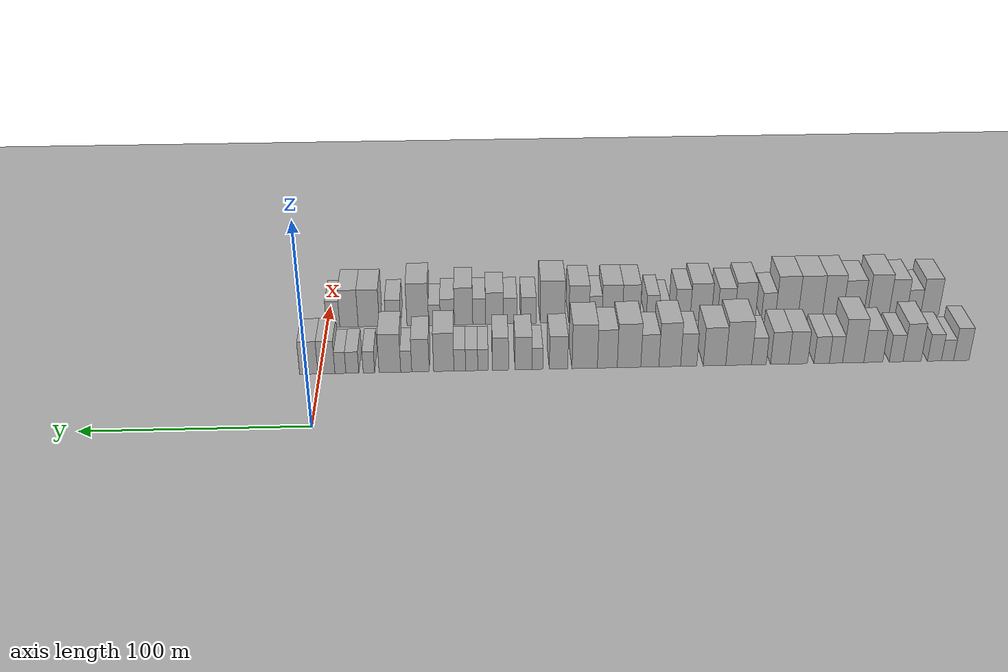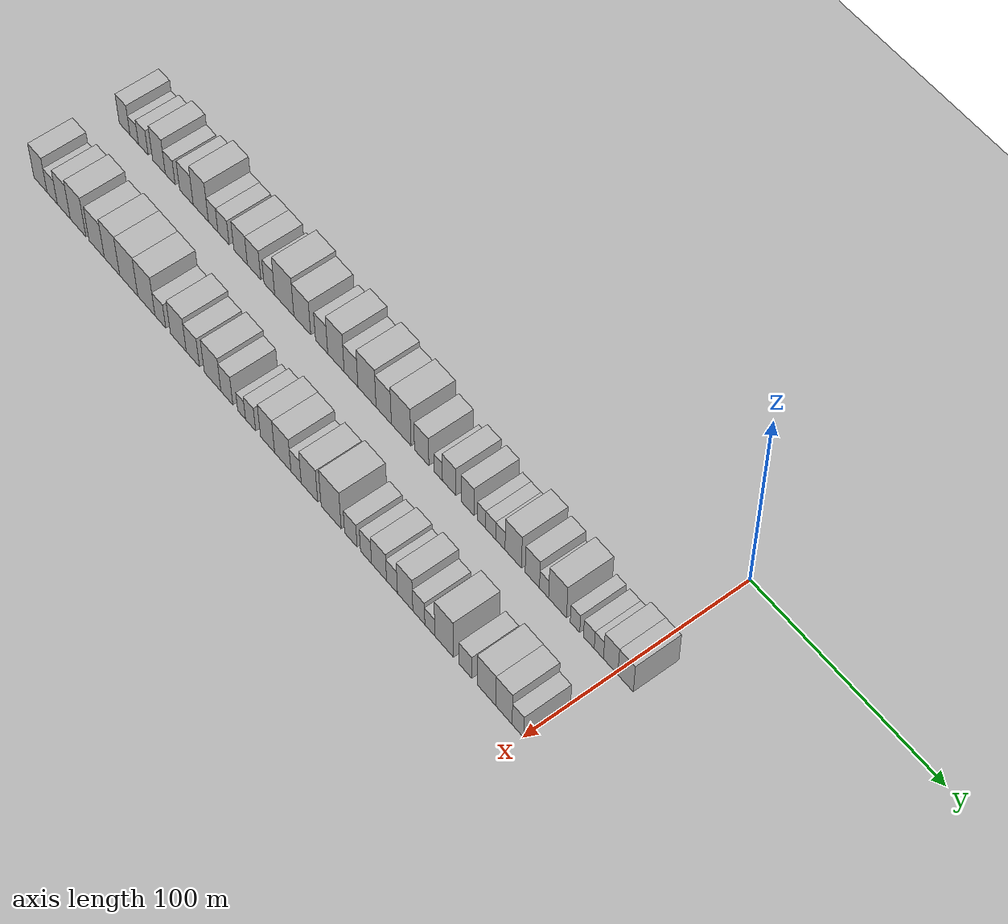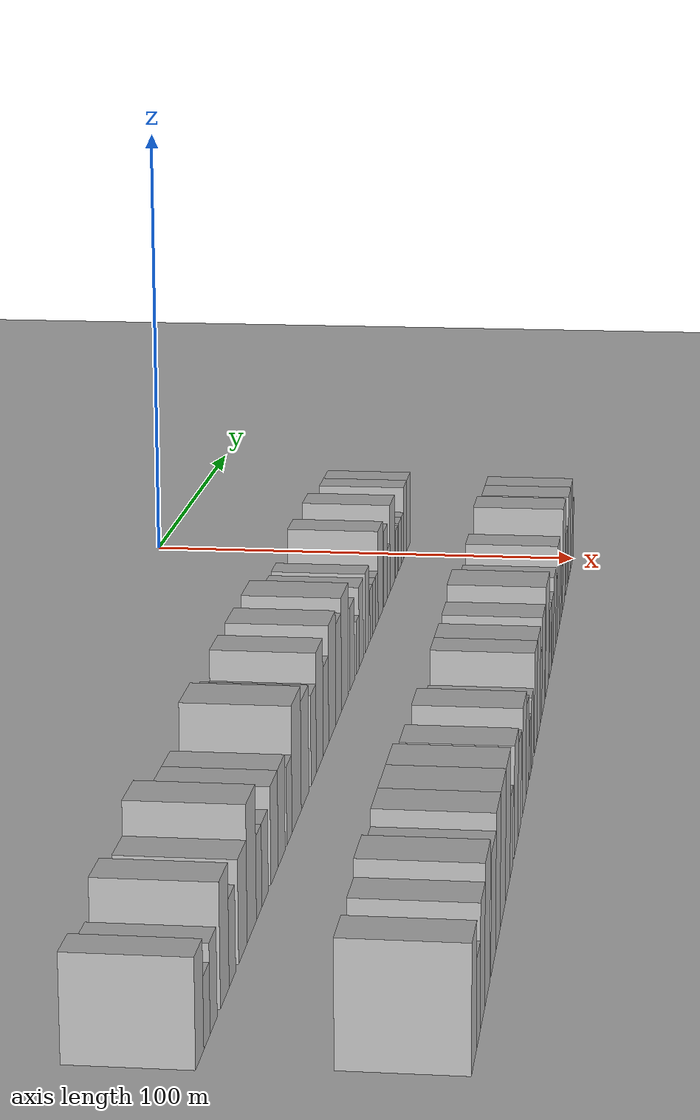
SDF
<sdf version="1.6">
 <world name="default">
  <include><name>ground_plane_1</name><uri>model://HANNAS_ground_plane</uri></include>
  <include>
   <name>ground_plane_2</name>
   <uri>model://HANNAS_ground_plane</uri>
   <pose>100 0 0  0 0 0</pose>
  </include>
  <model name="building_1">
   <static>1</static>
   <pose>50.0000 -296.3938 0 0.000000 0.000000 0.000000</pose>
   <link name="link">
    <pose>0 0 9.00 0 0 0</pose>
    <collision name="collision"><geometry><box><size>20.0000 7.2124 18.0000</size></box></geometry></collision>
    <visual name="visual">
     <cast_shadows>0</cast_shadows>
     <geometry><box><size>20.0000 7.2124 18.0000</size></box></geometry>
     <material>
      <script>
       <uri>model://HANNAS_wall/materials/scripts</uri>
       <uri>model://HANNAS_wall/materials/textures</uri>
       <name>vrc/HANNAS_wall</name>
      </script>
     </material>
    </visual>
   </link>
  </model>
  <model name="building_2">
   <static>1</static>
   <pose>50.0000 -289.9221 0 0.000000 0.000000 0.000000</pose>
   <link name="link">
    <pose>0 0 6.00 0 0 0</pose>
    <collision name="collision"><geometry><box><size>20.0000 5.7311 12.0000</size></box></geometry></collision>
    <visual name="visual">
     <cast_shadows>0</cast_shadows>
     <geometry><box><size>20.0000 5.7311 12.0000</size></box></geometry>
     <material>
      <script>
       <uri>model://HANNAS_wall/materials/scripts</uri>
       <uri>model://HANNAS_wall/materials/textures</uri>
       <name>vrc/HANNAS_wall</name>
      </script>
     </material>
    </visual>
   </link>
  </model>
  <model name="building_3">
   <static>1</static>
   <pose>50.0000 -283.7980 0 0.000000 0.000000 0.000000</pose>
   <link name="link">
    <pose>0 0 7.50 0 0 0</pose>
    <collision name="collision"><geometry><box><size>20.0000 6.5171 15.0000</size></box></geometry></collision>
    <visual name="visual">
     <cast_shadows>0</cast_shadows>
     <geometry><box><size>20.0000 6.5171 15.0000</size></box></geometry>
     <material>
      <script>
       <uri>model://HANNAS_wall/materials/scripts</uri>
       <uri>model://HANNAS_wall/materials/textures</uri>
       <name>vrc/HANNAS_wall</name>
      </script>
     </material>
    </visual>
   </link>
  </model>
  <model name="building_4">
   <static>1</static>
   <pose>50.0000 -273.3251 0 0.000000 0.000000 0.000000</pose>
   <link name="link">
    <pose>0 0 10.50 0 0 0</pose>
    <collision name="collision"><geometry><box><size>20.0000 8.4287 21.0000</size></box></geometry></collision>
    <visual name="visual">
     <cast_shadows>0</cast_shadows>
     <geometry><box><size>20.0000 8.4287 21.0000</size></box></geometry>
     <material>
      <script>
       <uri>model://HANNAS_wall/materials/scripts</uri>
       <uri>model://HANNAS_wall/materials/textures</uri>
       <name>vrc/HANNAS_wall</name>
      </script>
     </material>
    </visual>
   </link>
  </model>
  <model name="building_5">
   <static>1</static>
   <pose>50.0000 -265.8694 0 0.000000 0.000000 0.000000</pose>
   <link name="link">
    <pose>0 0 7.50 0 0 0</pose>
    <collision name="collision"><geometry><box><size>20.0000 6.4827 15.0000</size></box></geometry></collision>
    <visual name="visual">
     <cast_shadows>0</cast_shadows>
     <geometry><box><size>20.0000 6.4827 15.0000</size></box></geometry>
     <material>
      <script>
       <uri>model://HANNAS_wall/materials/scripts</uri>
       <uri>model://HANNAS_wall/materials/textures</uri>
       <name>vrc/HANNAS_wall</name>
      </script>
     </material>
    </visual>
   </link>
  </model>
  <model name="building_6">
   <static>1</static>
   <pose>50.0000 -255.1822 0 0.000000 0.000000 0.000000</pose>
   <link name="link">
    <pose>0 0 9.00 0 0 0</pose>
    <collision name="collision"><geometry><box><size>20.0000 8.8916 18.0000</size></box></geometry></collision>
    <visual name="visual">
     <cast_shadows>0</cast_shadows>
     <geometry><box><size>20.0000 8.8916 18.0000</size></box></geometry>
     <material>
      <script>
       <uri>model://HANNAS_wall/materials/scripts</uri>
       <uri>model://HANNAS_wall/materials/textures</uri>
       <name>vrc/HANNAS_wall</name>
      </script>
     </material>
    </visual>
   </link>
  </model>
  <model name="building_7">
   <static>1</static>
   <pose>50.0000 -245.7802 0 0.000000 0.000000 0.000000</pose>
   <link name="link">
    <pose>0 0 12.00 0 0 0</pose>
    <collision name="collision"><geometry><box><size>20.0000 9.9125 24.0000</size></box></geometry></collision>
    <visual name="visual">
     <cast_shadows>0</cast_shadows>
     <geometry><box><size>20.0000 9.9125 24.0000</size></box></geometry>
     <material>
      <script>
       <uri>model://HANNAS_wall/materials/scripts</uri>
       <uri>model://HANNAS_wall/materials/textures</uri>
       <name>vrc/HANNAS_wall</name>
      </script>
     </material>
    </visual>
   </link>
  </model>
  <model name="building_8">
   <static>1</static>
   <pose>50.0000 -237.7460 0 0.000000 0.000000 0.000000</pose>
   <link name="link">
    <pose>0 0 7.50 0 0 0</pose>
    <collision name="collision"><geometry><box><size>20.0000 6.1559 15.0000</size></box></geometry></collision>
    <visual name="visual">
     <cast_shadows>0</cast_shadows>
     <geometry><box><size>20.0000 6.1559 15.0000</size></box></geometry>
     <material>
      <script>
       <uri>model://HANNAS_wall/materials/scripts</uri>
       <uri>model://HANNAS_wall/materials/textures</uri>
       <name>vrc/HANNAS_wall</name>
      </script>
     </material>
    </visual>
   </link>
  </model>
  <model name="building_9">
   <static>1</static>
   <pose>50.0000 -231.0700 0 0.000000 0.000000 0.000000</pose>
   <link name="link">
    <pose>0 0 7.50 0 0 0</pose>
    <collision name="collision"><geometry><box><size>20.0000 7.1961 15.0000</size></box></geometry></collision>
    <visual name="visual">
     <cast_shadows>0</cast_shadows>
     <geometry><box><size>20.0000 7.1961 15.0000</size></box></geometry>
     <material>
      <script>
       <uri>model://HANNAS_wall/materials/scripts</uri>
       <uri>model://HANNAS_wall/materials/textures</uri>
       <name>vrc/HANNAS_wall</name>
      </script>
     </material>
    </visual>
   </link>
  </model>
  <model name="building_10">
   <static>1</static>
   <pose>50.0000 -220.1311 0 0.000000 0.000000 0.000000</pose>
   <link name="link">
    <pose>0 0 9.00 0 0 0</pose>
    <collision name="collision"><geometry><box><size>20.0000 8.6818 18.0000</size></box></geometry></collision>
    <visual name="visual">
     <cast_shadows>0</cast_shadows>
     <geometry><box><size>20.0000 8.6818 18.0000</size></box></geometry>
     <material>
      <script>
       <uri>model://HANNAS_wall/materials/scripts</uri>
       <uri>model://HANNAS_wall/materials/textures</uri>
       <name>vrc/HANNAS_wall</name>
      </script>
     </material>
    </visual>
   </link>
  </model>
  <model name="building_11">
   <static>1</static>
   <pose>50.0000 -211.5298 0 0.000000 0.000000 0.000000</pose>
   <link name="link">
    <pose>0 0 9.00 0 0 0</pose>
    <collision name="collision"><geometry><box><size>20.0000 8.5208 18.0000</size></box></geometry></collision>
    <visual name="visual">
     <cast_shadows>0</cast_shadows>
     <geometry><box><size>20.0000 8.5208 18.0000</size></box></geometry>
     <material>
      <script>
       <uri>model://HANNAS_wall/materials/scripts</uri>
       <uri>model://HANNAS_wall/materials/textures</uri>
       <name>vrc/HANNAS_wall</name>
      </script>
     </material>
    </visual>
   </link>
  </model>
  <model name="building_12">
   <static>1</static>
   <pose>50.0000 -201.8621 0 0.000000 0.000000 0.000000</pose>
   <link name="link">
    <pose>0 0 7.50 0 0 0</pose>
    <collision name="collision"><geometry><box><size>20.0000 6.8145 15.0000</size></box></geometry></collision>
    <visual name="visual">
     <cast_shadows>0</cast_shadows>
     <geometry><box><size>20.0000 6.8145 15.0000</size></box></geometry>
     <material>
      <script>
       <uri>model://HANNAS_wall/materials/scripts</uri>
       <uri>model://HANNAS_wall/materials/textures</uri>
       <name>vrc/HANNAS_wall</name>
      </script>
     </material>
    </visual>
   </link>
  </model>
  <model name="building_13">
   <static>1</static>
   <pose>50.0000 -192.4567 0 0.000000 0.000000 0.000000</pose>
   <link name="link">
    <pose>0 0 12.00 0 0 0</pose>
    <collision name="collision"><geometry><box><size>20.0000 11.9965 24.0000</size></box></geometry></collision>
    <visual name="visual">
     <cast_shadows>0</cast_shadows>
     <geometry><box><size>20.0000 11.9965 24.0000</size></box></geometry>
     <material>
      <script>
       <uri>model://HANNAS_wall/materials/scripts</uri>
       <uri>model://HANNAS_wall/materials/textures</uri>
       <name>vrc/HANNAS_wall</name>
      </script>
     </material>
    </visual>
   </link>
  </model>
  <model name="building_14">
   <static>1</static>
   <pose>50.0000 -181.2422 0 0.000000 0.000000 0.000000</pose>
   <link name="link">
    <pose>0 0 10.50 0 0 0</pose>
    <collision name="collision"><geometry><box><size>20.0000 10.4326 21.0000</size></box></geometry></collision>
    <visual name="visual">
     <cast_shadows>0</cast_shadows>
     <geometry><box><size>20.0000 10.4326 21.0000</size></box></geometry>
     <material>
      <script>
       <uri>model://HANNAS_wall/materials/scripts</uri>
       <uri>model://HANNAS_wall/materials/textures</uri>
       <name>vrc/HANNAS_wall</name>
      </script>
     </material>
    </visual>
   </link>
  </model>
  <model name="building_15">
   <static>1</static>
   <pose>50.0000 -169.2734 0 0.000000 0.000000 0.000000</pose>
   <link name="link">
    <pose>0 0 9.00 0 0 0</pose>
    <collision name="collision"><geometry><box><size>20.0000 7.5050 18.0000</size></box></geometry></collision>
    <visual name="visual">
     <cast_shadows>0</cast_shadows>
     <geometry><box><size>20.0000 7.5050 18.0000</size></box></geometry>
     <material>
      <script>
       <uri>model://HANNAS_wall/materials/scripts</uri>
       <uri>model://HANNAS_wall/materials/textures</uri>
       <name>vrc/HANNAS_wall</name>
      </script>
     </material>
    </visual>
   </link>
  </model>
  <model name="building_16">
   <static>1</static>
   <pose>50.0000 -160.4951 0 0.000000 0.000000 0.000000</pose>
   <link name="link">
    <pose>0 0 12.00 0 0 0</pose>
    <collision name="collision"><geometry><box><size>20.0000 10.0514 24.0000</size></box></geometry></collision>
    <visual name="visual">
     <cast_shadows>0</cast_shadows>
     <geometry><box><size>20.0000 10.0514 24.0000</size></box></geometry>
     <material>
      <script>
       <uri>model://HANNAS_wall/materials/scripts</uri>
       <uri>model://HANNAS_wall/materials/textures</uri>
       <name>vrc/HANNAS_wall</name>
      </script>
     </material>
    </visual>
   </link>
  </model>
  <model name="building_17">
   <static>1</static>
   <pose>50.0000 -151.2914 0 0.000000 0.000000 0.000000</pose>
   <link name="link">
    <pose>0 0 9.00 0 0 0</pose>
    <collision name="collision"><geometry><box><size>20.0000 8.3562 18.0000</size></box></geometry></collision>
    <visual name="visual">
     <cast_shadows>0</cast_shadows>
     <geometry><box><size>20.0000 8.3562 18.0000</size></box></geometry>
     <material>
      <script>
       <uri>model://HANNAS_wall/materials/scripts</uri>
       <uri>model://HANNAS_wall/materials/textures</uri>
       <name>vrc/HANNAS_wall</name>
      </script>
     </material>
    </visual>
   </link>
  </model>
  <model name="building_18">
   <static>1</static>
   <pose>50.0000 -141.6628 0 0.000000 0.000000 0.000000</pose>
   <link name="link">
    <pose>0 0 12.00 0 0 0</pose>
    <collision name="collision"><geometry><box><size>20.0000 10.9010 24.0000</size></box></geometry></collision>
    <visual name="visual">
     <cast_shadows>0</cast_shadows>
     <geometry><box><size>20.0000 10.9010 24.0000</size></box></geometry>
     <material>
      <script>
       <uri>model://HANNAS_wall/materials/scripts</uri>
       <uri>model://HANNAS_wall/materials/textures</uri>
       <name>vrc/HANNAS_wall</name>
      </script>
     </material>
    </visual>
   </link>
  </model>
  <model name="building_19">
   <static>1</static>
   <pose>50.0000 -131.6414 0 0.000000 0.000000 0.000000</pose>
   <link name="link">
    <pose>0 0 10.50 0 0 0</pose>
    <collision name="collision"><geometry><box><size>20.0000 9.1419 21.0000</size></box></geometry></collision>
    <visual name="visual">
     <cast_shadows>0</cast_shadows>
     <geometry><box><size>20.0000 9.1419 21.0000</size></box></geometry>
     <material>
      <script>
       <uri>model://HANNAS_wall/materials/scripts</uri>
       <uri>model://HANNAS_wall/materials/textures</uri>
       <name>vrc/HANNAS_wall</name>
      </script>
     </material>
    </visual>
   </link>
  </model>
  <model name="building_20">
   <static>1</static>
   <pose>50.0000 -121.2300 0 0.000000 0.000000 0.000000</pose>
   <link name="link">
    <pose>0 0 12.00 0 0 0</pose>
    <collision name="collision"><geometry><box><size>20.0000 11.6808 24.0000</size></box></geometry></collision>
    <visual name="visual">
     <cast_shadows>0</cast_shadows>
     <geometry><box><size>20.0000 11.6808 24.0000</size></box></geometry>
     <material>
      <script>
       <uri>model://HANNAS_wall/materials/scripts</uri>
       <uri>model://HANNAS_wall/materials/textures</uri>
       <name>vrc/HANNAS_wall</name>
      </script>
     </material>
    </visual>
   </link>
  </model>
  <model name="building_21">
   <static>1</static>
   <pose>50.0000 -109.1669 0 0.000000 0.000000 0.000000</pose>
   <link name="link">
    <pose>0 0 9.00 0 0 0</pose>
    <collision name="collision"><geometry><box><size>20.0000 8.4455 18.0000</size></box></geometry></collision>
    <visual name="visual">
     <cast_shadows>0</cast_shadows>
     <geometry><box><size>20.0000 8.4455 18.0000</size></box></geometry>
     <material>
      <script>
       <uri>model://HANNAS_wall/materials/scripts</uri>
       <uri>model://HANNAS_wall/materials/textures</uri>
       <name>vrc/HANNAS_wall</name>
      </script>
     </material>
    </visual>
   </link>
  </model>
  <model name="building_22">
   <static>1</static>
   <pose>50.0000 -99.4959 0 0.000000 0.000000 0.000000</pose>
   <link name="link">
    <pose>0 0 6.00 0 0 0</pose>
    <collision name="collision"><geometry><box><size>20.0000 4.8965 12.0000</size></box></geometry></collision>
    <visual name="visual">
     <cast_shadows>0</cast_shadows>
     <geometry><box><size>20.0000 4.8965 12.0000</size></box></geometry>
     <material>
      <script>
       <uri>model://HANNAS_wall/materials/scripts</uri>
       <uri>model://HANNAS_wall/materials/textures</uri>
       <name>vrc/HANNAS_wall</name>
      </script>
     </material>
    </visual>
   </link>
  </model>
  <model name="building_23">
   <static>1</static>
   <pose>50.0000 -93.1157 0 0.000000 0.000000 0.000000</pose>
   <link name="link">
    <pose>0 0 9.00 0 0 0</pose>
    <collision name="collision"><geometry><box><size>20.0000 7.8640 18.0000</size></box></geometry></collision>
    <visual name="visual">
     <cast_shadows>0</cast_shadows>
     <geometry><box><size>20.0000 7.8640 18.0000</size></box></geometry>
     <material>
      <script>
       <uri>model://HANNAS_wall/materials/scripts</uri>
       <uri>model://HANNAS_wall/materials/textures</uri>
       <name>vrc/HANNAS_wall</name>
      </script>
     </material>
    </visual>
   </link>
  </model>
  <model name="building_24">
   <static>1</static>
   <pose>50.0000 -82.5297 0 0.000000 0.000000 0.000000</pose>
   <link name="link">
    <pose>0 0 9.00 0 0 0</pose>
    <collision name="collision"><geometry><box><size>20.0000 7.3079 18.0000</size></box></geometry></collision>
    <visual name="visual">
     <cast_shadows>0</cast_shadows>
     <geometry><box><size>20.0000 7.3079 18.0000</size></box></geometry>
     <material>
      <script>
       <uri>model://HANNAS_wall/materials/scripts</uri>
       <uri>model://HANNAS_wall/materials/textures</uri>
       <name>vrc/HANNAS_wall</name>
      </script>
     </material>
    </visual>
   </link>
  </model>
  <model name="building_25">
   <static>1</static>
   <pose>50.0000 -74.4745 0 0.000000 0.000000 0.000000</pose>
   <link name="link">
    <pose>0 0 6.00 0 0 0</pose>
    <collision name="collision"><geometry><box><size>20.0000 4.8025 12.0000</size></box></geometry></collision>
    <visual name="visual">
     <cast_shadows>0</cast_shadows>
     <geometry><box><size>20.0000 4.8025 12.0000</size></box></geometry>
     <material>
      <script>
       <uri>model://HANNAS_wall/materials/scripts</uri>
       <uri>model://HANNAS_wall/materials/textures</uri>
       <name>vrc/HANNAS_wall</name>
      </script>
     </material>
    </visual>
   </link>
  </model>
  <model name="building_26">
   <static>1</static>
   <pose>50.0000 -69.2861 0 0.000000 0.000000 0.000000</pose>
   <link name="link">
    <pose>0 0 6.00 0 0 0</pose>
    <collision name="collision"><geometry><box><size>20.0000 5.5743 12.0000</size></box></geometry></collision>
    <visual name="visual">
     <cast_shadows>0</cast_shadows>
     <geometry><box><size>20.0000 5.5743 12.0000</size></box></geometry>
     <material>
      <script>
       <uri>model://HANNAS_wall/materials/scripts</uri>
       <uri>model://HANNAS_wall/materials/textures</uri>
       <name>vrc/HANNAS_wall</name>
      </script>
     </material>
    </visual>
   </link>
  </model>
  <model name="building_27">
   <static>1</static>
   <pose>50.0000 -63.8229 0 0.000000 0.000000 0.000000</pose>
   <link name="link">
    <pose>0 0 6.00 0 0 0</pose>
    <collision name="collision"><geometry><box><size>20.0000 5.3521 12.0000</size></box></geometry></collision>
    <visual name="visual">
     <cast_shadows>0</cast_shadows>
     <geometry><box><size>20.0000 5.3521 12.0000</size></box></geometry>
     <material>
      <script>
       <uri>model://HANNAS_wall/materials/scripts</uri>
       <uri>model://HANNAS_wall/materials/textures</uri>
       <name>vrc/HANNAS_wall</name>
      </script>
     </material>
    </visual>
   </link>
  </model>
  <model name="building_28">
   <static>1</static>
   <pose>50.0000 -56.4965 0 0.000000 0.000000 0.000000</pose>
   <link name="link">
    <pose>0 0 10.50 0 0 0</pose>
    <collision name="collision"><geometry><box><size>20.0000 9.3006 21.0000</size></box></geometry></collision>
    <visual name="visual">
     <cast_shadows>0</cast_shadows>
     <geometry><box><size>20.0000 9.3006 21.0000</size></box></geometry>
     <material>
      <script>
       <uri>model://HANNAS_wall/materials/scripts</uri>
       <uri>model://HANNAS_wall/materials/textures</uri>
       <name>vrc/HANNAS_wall</name>
      </script>
     </material>
    </visual>
   </link>
  </model>
  <model name="building_29">
   <static>1</static>
   <pose>50.0000 -45.8440 0 0.000000 0.000000 0.000000</pose>
   <link name="link">
    <pose>0 0 9.00 0 0 0</pose>
    <collision name="collision"><geometry><box><size>20.0000 8.0045 18.0000</size></box></geometry></collision>
    <visual name="visual">
     <cast_shadows>0</cast_shadows>
     <geometry><box><size>20.0000 8.0045 18.0000</size></box></geometry>
     <material>
      <script>
       <uri>model://HANNAS_wall/materials/scripts</uri>
       <uri>model://HANNAS_wall/materials/textures</uri>
       <name>vrc/HANNAS_wall</name>
      </script>
     </material>
    </visual>
   </link>
  </model>
  <model name="building_30">
   <static>1</static>
   <pose>50.0000 -39.3203 0 0.000000 0.000000 0.000000</pose>
   <link name="link">
    <pose>0 0 6.00 0 0 0</pose>
    <collision name="collision"><geometry><box><size>20.0000 5.0430 12.0000</size></box></geometry></collision>
    <visual name="visual">
     <cast_shadows>0</cast_shadows>
     <geometry><box><size>20.0000 5.0430 12.0000</size></box></geometry>
     <material>
      <script>
       <uri>model://HANNAS_wall/materials/scripts</uri>
       <uri>model://HANNAS_wall/materials/textures</uri>
       <name>vrc/HANNAS_wall</name>
      </script>
     </material>
    </visual>
   </link>
  </model>
  <model name="building_31">
   <static>1</static>
   <pose>50.0000 -31.8423 0 0.000000 0.000000 0.000000</pose>
   <link name="link">
    <pose>0 0 10.50 0 0 0</pose>
    <collision name="collision"><geometry><box><size>20.0000 9.9128 21.0000</size></box></geometry></collision>
    <visual name="visual">
     <cast_shadows>0</cast_shadows>
     <geometry><box><size>20.0000 9.9128 21.0000</size></box></geometry>
     <material>
      <script>
       <uri>model://HANNAS_wall/materials/scripts</uri>
       <uri>model://HANNAS_wall/materials/textures</uri>
       <name>vrc/HANNAS_wall</name>
      </script>
     </material>
    </visual>
   </link>
  </model>
  <model name="building_32">
   <static>1</static>
   <pose>50.0000 -22.2668 0 0.000000 0.000000 0.000000</pose>
   <link name="link">
    <pose>0 0 6.00 0 0 0</pose>
    <collision name="collision"><geometry><box><size>20.0000 5.2384 12.0000</size></box></geometry></collision>
    <visual name="visual">
     <cast_shadows>0</cast_shadows>
     <geometry><box><size>20.0000 5.2384 12.0000</size></box></geometry>
     <material>
      <script>
       <uri>model://HANNAS_wall/materials/scripts</uri>
       <uri>model://HANNAS_wall/materials/textures</uri>
       <name>vrc/HANNAS_wall</name>
      </script>
     </material>
    </visual>
   </link>
  </model>
  <model name="building_33">
   <static>1</static>
   <pose>50.0000 -14.6996 0 0.000000 0.000000 0.000000</pose>
   <link name="link">
    <pose>0 0 6.00 0 0 0</pose>
    <collision name="collision"><geometry><box><size>20.0000 5.8960 12.0000</size></box></geometry></collision>
    <visual name="visual">
     <cast_shadows>0</cast_shadows>
     <geometry><box><size>20.0000 5.8960 12.0000</size></box></geometry>
     <material>
      <script>
       <uri>model://HANNAS_wall/materials/scripts</uri>
       <uri>model://HANNAS_wall/materials/textures</uri>
       <name>vrc/HANNAS_wall</name>
      </script>
     </material>
    </visual>
   </link>
  </model>
  <model name="building_34">
   <static>1</static>
   <pose>50.0000 -9.2656 0 0.000000 0.000000 0.000000</pose>
   <link name="link">
    <pose>0 0 6.00 0 0 0</pose>
    <collision name="collision"><geometry><box><size>20.0000 4.9720 12.0000</size></box></geometry></collision>
    <visual name="visual">
     <cast_shadows>0</cast_shadows>
     <geometry><box><size>20.0000 4.9720 12.0000</size></box></geometry>
     <material>
      <script>
       <uri>model://HANNAS_wall/materials/scripts</uri>
       <uri>model://HANNAS_wall/materials/textures</uri>
       <name>vrc/HANNAS_wall</name>
      </script>
     </material>
    </visual>
   </link>
  </model>
  <model name="building_35">
   <static>1</static>
   <pose>50.0000 -2.9061 0 0.000000 0.000000 0.000000</pose>
   <link name="link">
    <pose>0 0 9.00 0 0 0</pose>
    <collision name="collision"><geometry><box><size>20.0000 7.7469 18.0000</size></box></geometry></collision>
    <visual name="visual">
     <cast_shadows>0</cast_shadows>
     <geometry><box><size>20.0000 7.7469 18.0000</size></box></geometry>
     <material>
      <script>
       <uri>model://HANNAS_wall/materials/scripts</uri>
       <uri>model://HANNAS_wall/materials/textures</uri>
       <name>vrc/HANNAS_wall</name>
      </script>
     </material>
    </visual>
   </link>
  </model>
  <model name="building_36">
   <static>1</static>
   <pose>50.0000 5.1324 0 0.000000 0.000000 0.000000</pose>
   <link name="link">
    <pose>0 0 9.00 0 0 0</pose>
    <collision name="collision"><geometry><box><size>20.0000 8.3301 18.0000</size></box></geometry></collision>
    <visual name="visual">
     <cast_shadows>0</cast_shadows>
     <geometry><box><size>20.0000 8.3301 18.0000</size></box></geometry>
     <material>
      <script>
       <uri>model://HANNAS_wall/materials/scripts</uri>
       <uri>model://HANNAS_wall/materials/textures</uri>
       <name>vrc/HANNAS_wall</name>
      </script>
     </material>
    </visual>
   </link>
  </model>
  <model name="building_71">
   <static>1</static>
   <pose>90.0000 -293.5367 0 0.000000 0.000000 0.000000</pose>
   <link name="link">
    <pose>0 0 10.50 0 0 0</pose>
    <collision name="collision"><geometry><box><size>20.0000 8.9265 21.0000</size></box></geometry></collision>
    <visual name="visual">
     <cast_shadows>0</cast_shadows>
     <geometry><box><size>20.0000 8.9265 21.0000</size></box></geometry>
     <material>
      <script>
       <uri>model://HANNAS_wall/materials/scripts</uri>
       <uri>model://HANNAS_wall/materials/textures</uri>
       <name>vrc/HANNAS_wall</name>
      </script>
     </material>
    </visual>
   </link>
  </model>
  <model name="building_72">
   <static>1</static>
   <pose>90.0000 -285.5824 0 0.000000 0.000000 0.000000</pose>
   <link name="link">
    <pose>0 0 7.50 0 0 0</pose>
    <collision name="collision"><geometry><box><size>20.0000 6.9822 15.0000</size></box></geometry></collision>
    <visual name="visual">
     <cast_shadows>0</cast_shadows>
     <geometry><box><size>20.0000 6.9822 15.0000</size></box></geometry>
     <material>
      <script>
       <uri>model://HANNAS_wall/materials/scripts</uri>
       <uri>model://HANNAS_wall/materials/textures</uri>
       <name>vrc/HANNAS_wall</name>
      </script>
     </material>
    </visual>
   </link>
  </model>
  <model name="building_73">
   <static>1</static>
   <pose>90.0000 -277.7234 0 0.000000 0.000000 0.000000</pose>
   <link name="link">
    <pose>0 0 10.50 0 0 0</pose>
    <collision name="collision"><geometry><box><size>20.0000 8.7357 21.0000</size></box></geometry></collision>
    <visual name="visual">
     <cast_shadows>0</cast_shadows>
     <geometry><box><size>20.0000 8.7357 21.0000</size></box></geometry>
     <material>
      <script>
       <uri>model://HANNAS_wall/materials/scripts</uri>
       <uri>model://HANNAS_wall/materials/textures</uri>
       <name>vrc/HANNAS_wall</name>
      </script>
     </material>
    </visual>
   </link>
  </model>
  <model name="building_74">
   <static>1</static>
   <pose>90.0000 -268.1141 0 0.000000 0.000000 0.000000</pose>
   <link name="link">
    <pose>0 0 12.00 0 0 0</pose>
    <collision name="collision"><geometry><box><size>20.0000 10.4828 24.0000</size></box></geometry></collision>
    <visual name="visual">
     <cast_shadows>0</cast_shadows>
     <geometry><box><size>20.0000 10.4828 24.0000</size></box></geometry>
     <material>
      <script>
       <uri>model://HANNAS_wall/materials/scripts</uri>
       <uri>model://HANNAS_wall/materials/textures</uri>
       <name>vrc/HANNAS_wall</name>
      </script>
     </material>
    </visual>
   </link>
  </model>
  <model name="building_75">
   <static>1</static>
   <pose>90.0000 -255.7663 0 0.000000 0.000000 0.000000</pose>
   <link name="link">
    <pose>0 0 10.50 0 0 0</pose>
    <collision name="collision"><geometry><box><size>20.0000 10.2129 21.0000</size></box></geometry></collision>
    <visual name="visual">
     <cast_shadows>0</cast_shadows>
     <geometry><box><size>20.0000 10.2129 21.0000</size></box></geometry>
     <material>
      <script>
       <uri>model://HANNAS_wall/materials/scripts</uri>
       <uri>model://HANNAS_wall/materials/textures</uri>
       <name>vrc/HANNAS_wall</name>
      </script>
     </material>
    </visual>
   </link>
  </model>
  <model name="building_76">
   <static>1</static>
   <pose>90.0000 -245.6061 0 0.000000 0.000000 0.000000</pose>
   <link name="link">
    <pose>0 0 12.00 0 0 0</pose>
    <collision name="collision"><geometry><box><size>20.0000 10.1073 24.0000</size></box></geometry></collision>
    <visual name="visual">
     <cast_shadows>0</cast_shadows>
     <geometry><box><size>20.0000 10.1073 24.0000</size></box></geometry>
     <material>
      <script>
       <uri>model://HANNAS_wall/materials/scripts</uri>
       <uri>model://HANNAS_wall/materials/textures</uri>
       <name>vrc/HANNAS_wall</name>
      </script>
     </material>
    </visual>
   </link>
  </model>
  <model name="building_77">
   <static>1</static>
   <pose>90.0000 -234.6219 0 0.000000 0.000000 0.000000</pose>
   <link name="link">
    <pose>0 0 12.00 0 0 0</pose>
    <collision name="collision"><geometry><box><size>20.0000 11.8612 24.0000</size></box></geometry></collision>
    <visual name="visual">
     <cast_shadows>0</cast_shadows>
     <geometry><box><size>20.0000 11.8612 24.0000</size></box></geometry>
     <material>
      <script>
       <uri>model://HANNAS_wall/materials/scripts</uri>
       <uri>model://HANNAS_wall/materials/textures</uri>
       <name>vrc/HANNAS_wall</name>
      </script>
     </material>
    </visual>
   </link>
  </model>
  <model name="building_78">
   <static>1</static>
   <pose>90.0000 -223.1307 0 0.000000 0.000000 0.000000</pose>
   <link name="link">
    <pose>0 0 12.00 0 0 0</pose>
    <collision name="collision"><geometry><box><size>20.0000 11.1212 24.0000</size></box></geometry></collision>
    <visual name="visual">
     <cast_shadows>0</cast_shadows>
     <geometry><box><size>20.0000 11.1212 24.0000</size></box></geometry>
     <material>
      <script>
       <uri>model://HANNAS_wall/materials/scripts</uri>
       <uri>model://HANNAS_wall/materials/textures</uri>
       <name>vrc/HANNAS_wall</name>
      </script>
     </material>
    </visual>
   </link>
  </model>
  <model name="building_79">
   <static>1</static>
   <pose>90.0000 -214.1287 0 0.000000 0.000000 0.000000</pose>
   <link name="link">
    <pose>0 0 7.50 0 0 0</pose>
    <collision name="collision"><geometry><box><size>20.0000 6.8827 15.0000</size></box></geometry></collision>
    <visual name="visual">
     <cast_shadows>0</cast_shadows>
     <geometry><box><size>20.0000 6.8827 15.0000</size></box></geometry>
     <material>
      <script>
       <uri>model://HANNAS_wall/materials/scripts</uri>
       <uri>model://HANNAS_wall/materials/textures</uri>
       <name>vrc/HANNAS_wall</name>
      </script>
     </material>
    </visual>
   </link>
  </model>
  <model name="building_80">
   <static>1</static>
   <pose>90.0000 -202.6399 0 0.000000 0.000000 0.000000</pose>
   <link name="link">
    <pose>0 0 10.50 0 0 0</pose>
    <collision name="collision"><geometry><box><size>20.0000 10.0950 21.0000</size></box></geometry></collision>
    <visual name="visual">
     <cast_shadows>0</cast_shadows>
     <geometry><box><size>20.0000 10.0950 21.0000</size></box></geometry>
     <material>
      <script>
       <uri>model://HANNAS_wall/materials/scripts</uri>
       <uri>model://HANNAS_wall/materials/textures</uri>
       <name>vrc/HANNAS_wall</name>
      </script>
     </material>
    </visual>
   </link>
  </model>
  <model name="building_81">
   <static>1</static>
   <pose>90.0000 -193.3955 0 0.000000 0.000000 0.000000</pose>
   <link name="link">
    <pose>0 0 9.00 0 0 0</pose>
    <collision name="collision"><geometry><box><size>20.0000 8.3936 18.0000</size></box></geometry></collision>
    <visual name="visual">
     <cast_shadows>0</cast_shadows>
     <geometry><box><size>20.0000 8.3936 18.0000</size></box></geometry>
     <material>
      <script>
       <uri>model://HANNAS_wall/materials/scripts</uri>
       <uri>model://HANNAS_wall/materials/textures</uri>
       <name>vrc/HANNAS_wall</name>
      </script>
     </material>
    </visual>
   </link>
  </model>
  <model name="building_82">
   <static>1</static>
   <pose>90.0000 -180.9902 0 0.000000 0.000000 0.000000</pose>
   <link name="link">
    <pose>0 0 10.50 0 0 0</pose>
    <collision name="collision"><geometry><box><size>20.0000 10.4172 21.0000</size></box></geometry></collision>
    <visual name="visual">
     <cast_shadows>0</cast_shadows>
     <geometry><box><size>20.0000 10.4172 21.0000</size></box></geometry>
     <material>
      <script>
       <uri>model://HANNAS_wall/materials/scripts</uri>
       <uri>model://HANNAS_wall/materials/textures</uri>
       <name>vrc/HANNAS_wall</name>
      </script>
     </material>
    </visual>
   </link>
  </model>
  <model name="building_83">
   <static>1</static>
   <pose>90.0000 -172.0745 0 0.000000 0.000000 0.000000</pose>
   <link name="link">
    <pose>0 0 9.00 0 0 0</pose>
    <collision name="collision"><geometry><box><size>20.0000 7.4141 18.0000</size></box></geometry></collision>
    <visual name="visual">
     <cast_shadows>0</cast_shadows>
     <geometry><box><size>20.0000 7.4141 18.0000</size></box></geometry>
     <material>
      <script>
       <uri>model://HANNAS_wall/materials/scripts</uri>
       <uri>model://HANNAS_wall/materials/textures</uri>
       <name>vrc/HANNAS_wall</name>
      </script>
     </material>
    </visual>
   </link>
  </model>
  <model name="building_84">
   <static>1</static>
   <pose>90.0000 -162.9481 0 0.000000 0.000000 0.000000</pose>
   <link name="link">
    <pose>0 0 6.00 0 0 0</pose>
    <collision name="collision"><geometry><box><size>20.0000 4.8387 12.0000</size></box></geometry></collision>
    <visual name="visual">
     <cast_shadows>0</cast_shadows>
     <geometry><box><size>20.0000 4.8387 12.0000</size></box></geometry>
     <material>
      <script>
       <uri>model://HANNAS_wall/materials/scripts</uri>
       <uri>model://HANNAS_wall/materials/textures</uri>
       <name>vrc/HANNAS_wall</name>
      </script>
     </material>
    </visual>
   </link>
  </model>
  <model name="building_85">
   <static>1</static>
   <pose>90.0000 -157.4152 0 0.000000 0.000000 0.000000</pose>
   <link name="link">
    <pose>0 0 7.50 0 0 0</pose>
    <collision name="collision"><geometry><box><size>20.0000 6.2272 15.0000</size></box></geometry></collision>
    <visual name="visual">
     <cast_shadows>0</cast_shadows>
     <geometry><box><size>20.0000 6.2272 15.0000</size></box></geometry>
     <material>
      <script>
       <uri>model://HANNAS_wall/materials/scripts</uri>
       <uri>model://HANNAS_wall/materials/textures</uri>
       <name>vrc/HANNAS_wall</name>
      </script>
     </material>
    </visual>
   </link>
  </model>
  <model name="building_86">
   <static>1</static>
   <pose>90.0000 -146.9797 0 0.000000 0.000000 0.000000</pose>
   <link name="link">
    <pose>0 0 10.50 0 0 0</pose>
    <collision name="collision"><geometry><box><size>20.0000 8.6438 21.0000</size></box></geometry></collision>
    <visual name="visual">
     <cast_shadows>0</cast_shadows>
     <geometry><box><size>20.0000 8.6438 21.0000</size></box></geometry>
     <material>
      <script>
       <uri>model://HANNAS_wall/materials/scripts</uri>
       <uri>model://HANNAS_wall/materials/textures</uri>
       <name>vrc/HANNAS_wall</name>
      </script>
     </material>
    </visual>
   </link>
  </model>
  <model name="building_87">
   <static>1</static>
   <pose>90.0000 -137.7073 0 0.000000 0.000000 0.000000</pose>
   <link name="link">
    <pose>0 0 10.50 0 0 0</pose>
    <collision name="collision"><geometry><box><size>20.0000 9.9009 21.0000</size></box></geometry></collision>
    <visual name="visual">
     <cast_shadows>0</cast_shadows>
     <geometry><box><size>20.0000 9.9009 21.0000</size></box></geometry>
     <material>
      <script>
       <uri>model://HANNAS_wall/materials/scripts</uri>
       <uri>model://HANNAS_wall/materials/textures</uri>
       <name>vrc/HANNAS_wall</name>
      </script>
     </material>
    </visual>
   </link>
  </model>
  <model name="building_88">
   <static>1</static>
   <pose>90.0000 -129.6641 0 0.000000 0.000000 0.000000</pose>
   <link name="link">
    <pose>0 0 7.50 0 0 0</pose>
    <collision name="collision"><geometry><box><size>20.0000 6.1856 15.0000</size></box></geometry></collision>
    <visual name="visual">
     <cast_shadows>0</cast_shadows>
     <geometry><box><size>20.0000 6.1856 15.0000</size></box></geometry>
     <material>
      <script>
       <uri>model://HANNAS_wall/materials/scripts</uri>
       <uri>model://HANNAS_wall/materials/textures</uri>
       <name>vrc/HANNAS_wall</name>
      </script>
     </material>
    </visual>
   </link>
  </model>
  <model name="building_89">
   <static>1</static>
   <pose>90.0000 -121.6349 0 0.000000 0.000000 0.000000</pose>
   <link name="link">
    <pose>0 0 10.50 0 0 0</pose>
    <collision name="collision"><geometry><box><size>20.0000 9.8728 21.0000</size></box></geometry></collision>
    <visual name="visual">
     <cast_shadows>0</cast_shadows>
     <geometry><box><size>20.0000 9.8728 21.0000</size></box></geometry>
     <material>
      <script>
       <uri>model://HANNAS_wall/materials/scripts</uri>
       <uri>model://HANNAS_wall/materials/textures</uri>
       <name>vrc/HANNAS_wall</name>
      </script>
     </material>
    </visual>
   </link>
  </model>
  <model name="building_90">
   <static>1</static>
   <pose>90.0000 -108.7541 0 0.000000 0.000000 0.000000</pose>
   <link name="link">
    <pose>0 0 12.00 0 0 0</pose>
    <collision name="collision"><geometry><box><size>20.0000 11.8887 24.0000</size></box></geometry></collision>
    <visual name="visual">
     <cast_shadows>0</cast_shadows>
     <geometry><box><size>20.0000 11.8887 24.0000</size></box></geometry>
     <material>
      <script>
       <uri>model://HANNAS_wall/materials/scripts</uri>
       <uri>model://HANNAS_wall/materials/textures</uri>
       <name>vrc/HANNAS_wall</name>
      </script>
     </material>
    </visual>
   </link>
  </model>
  <model name="building_91">
   <static>1</static>
   <pose>90.0000 -97.1588 0 0.000000 0.000000 0.000000</pose>
   <link name="link">
    <pose>0 0 7.50 0 0 0</pose>
    <collision name="collision"><geometry><box><size>20.0000 7.3018 15.0000</size></box></geometry></collision>
    <visual name="visual">
     <cast_shadows>0</cast_shadows>
     <geometry><box><size>20.0000 7.3018 15.0000</size></box></geometry>
     <material>
      <script>
       <uri>model://HANNAS_wall/materials/scripts</uri>
       <uri>model://HANNAS_wall/materials/textures</uri>
       <name>vrc/HANNAS_wall</name>
      </script>
     </material>
    </visual>
   </link>
  </model>
  <model name="building_92">
   <static>1</static>
   <pose>90.0000 -88.2832 0 0.000000 0.000000 0.000000</pose>
   <link name="link">
    <pose>0 0 7.50 0 0 0</pose>
    <collision name="collision"><geometry><box><size>20.0000 6.4495 15.0000</size></box></geometry></collision>
    <visual name="visual">
     <cast_shadows>0</cast_shadows>
     <geometry><box><size>20.0000 6.4495 15.0000</size></box></geometry>
     <material>
      <script>
       <uri>model://HANNAS_wall/materials/scripts</uri>
       <uri>model://HANNAS_wall/materials/textures</uri>
       <name>vrc/HANNAS_wall</name>
      </script>
     </material>
    </visual>
   </link>
  </model>
  <model name="building_93">
   <static>1</static>
   <pose>90.0000 -80.7114 0 0.000000 0.000000 0.000000</pose>
   <link name="link">
    <pose>0 0 9.00 0 0 0</pose>
    <collision name="collision"><geometry><box><size>20.0000 8.6941 18.0000</size></box></geometry></collision>
    <visual name="visual">
     <cast_shadows>0</cast_shadows>
     <geometry><box><size>20.0000 8.6941 18.0000</size></box></geometry>
     <material>
      <script>
       <uri>model://HANNAS_wall/materials/scripts</uri>
       <uri>model://HANNAS_wall/materials/textures</uri>
       <name>vrc/HANNAS_wall</name>
      </script>
     </material>
    </visual>
   </link>
  </model>
  <model name="building_94">
   <static>1</static>
   <pose>90.0000 -73.2399 0 0.000000 0.000000 0.000000</pose>
   <link name="link">
    <pose>0 0 7.50 0 0 0</pose>
    <collision name="collision"><geometry><box><size>20.0000 6.2490 15.0000</size></box></geometry></collision>
    <visual name="visual">
     <cast_shadows>0</cast_shadows>
     <geometry><box><size>20.0000 6.2490 15.0000</size></box></geometry>
     <material>
      <script>
       <uri>model://HANNAS_wall/materials/scripts</uri>
       <uri>model://HANNAS_wall/materials/textures</uri>
       <name>vrc/HANNAS_wall</name>
      </script>
     </material>
    </visual>
   </link>
  </model>
  <model name="building_95">
   <static>1</static>
   <pose>90.0000 -65.6993 0 0.000000 0.000000 0.000000</pose>
   <link name="link">
    <pose>0 0 10.50 0 0 0</pose>
    <collision name="collision"><geometry><box><size>20.0000 8.8324 21.0000</size></box></geometry></collision>
    <visual name="visual">
     <cast_shadows>0</cast_shadows>
     <geometry><box><size>20.0000 8.8324 21.0000</size></box></geometry>
     <material>
      <script>
       <uri>model://HANNAS_wall/materials/scripts</uri>
       <uri>model://HANNAS_wall/materials/textures</uri>
       <name>vrc/HANNAS_wall</name>
      </script>
     </material>
    </visual>
   </link>
  </model>
  <model name="building_96">
   <static>1</static>
   <pose>90.0000 -57.8757 0 0.000000 0.000000 0.000000</pose>
   <link name="link">
    <pose>0 0 7.50 0 0 0</pose>
    <collision name="collision"><geometry><box><size>20.0000 6.8147 15.0000</size></box></geometry></collision>
    <visual name="visual">
     <cast_shadows>0</cast_shadows>
     <geometry><box><size>20.0000 6.8147 15.0000</size></box></geometry>
     <material>
      <script>
       <uri>model://HANNAS_wall/materials/scripts</uri>
       <uri>model://HANNAS_wall/materials/textures</uri>
       <name>vrc/HANNAS_wall</name>
      </script>
     </material>
    </visual>
   </link>
  </model>
  <model name="building_97">
   <static>1</static>
   <pose>90.0000 -51.6335 0 0.000000 0.000000 0.000000</pose>
   <link name="link">
    <pose>0 0 6.00 0 0 0</pose>
    <collision name="collision"><geometry><box><size>20.0000 5.6696 12.0000</size></box></geometry></collision>
    <visual name="visual">
     <cast_shadows>0</cast_shadows>
     <geometry><box><size>20.0000 5.6696 12.0000</size></box></geometry>
     <material>
      <script>
       <uri>model://HANNAS_wall/materials/scripts</uri>
       <uri>model://HANNAS_wall/materials/textures</uri>
       <name>vrc/HANNAS_wall</name>
      </script>
     </material>
    </visual>
   </link>
  </model>
  <model name="building_98">
   <static>1</static>
   <pose>90.0000 -43.5629 0 0.000000 0.000000 0.000000</pose>
   <link name="link">
    <pose>0 0 12.00 0 0 0</pose>
    <collision name="collision"><geometry><box><size>20.0000 10.4717 24.0000</size></box></geometry></collision>
    <visual name="visual">
     <cast_shadows>0</cast_shadows>
     <geometry><box><size>20.0000 10.4717 24.0000</size></box></geometry>
     <material>
      <script>
       <uri>model://HANNAS_wall/materials/scripts</uri>
       <uri>model://HANNAS_wall/materials/textures</uri>
       <name>vrc/HANNAS_wall</name>
      </script>
     </material>
    </visual>
   </link>
  </model>
  <model name="building_99">
   <static>1</static>
   <pose>90.0000 -31.6972 0 0.000000 0.000000 0.000000</pose>
   <link name="link">
    <pose>0 0 7.50 0 0 0</pose>
    <collision name="collision"><geometry><box><size>20.0000 7.2596 15.0000</size></box></geometry></collision>
    <visual name="visual">
     <cast_shadows>0</cast_shadows>
     <geometry><box><size>20.0000 7.2596 15.0000</size></box></geometry>
     <material>
      <script>
       <uri>model://HANNAS_wall/materials/scripts</uri>
       <uri>model://HANNAS_wall/materials/textures</uri>
       <name>vrc/HANNAS_wall</name>
      </script>
     </material>
    </visual>
   </link>
  </model>
  <model name="building_100">
   <static>1</static>
   <pose>90.0000 -19.9507 0 0.000000 0.000000 0.000000</pose>
   <link name="link">
    <pose>0 0 10.50 0 0 0</pose>
    <collision name="collision"><geometry><box><size>20.0000 10.2334 21.0000</size></box></geometry></collision>
    <visual name="visual">
     <cast_shadows>0</cast_shadows>
     <geometry><box><size>20.0000 10.2334 21.0000</size></box></geometry>
     <material>
      <script>
       <uri>model://HANNAS_wall/materials/scripts</uri>
       <uri>model://HANNAS_wall/materials/textures</uri>
       <name>vrc/HANNAS_wall</name>
      </script>
     </material>
    </visual>
   </link>
  </model>
  <model name="building_101">
   <static>1</static>
   <pose>90.0000 -10.3966 0 0.000000 0.000000 0.000000</pose>
   <link name="link">
    <pose>0 0 10.50 0 0 0</pose>
    <collision name="collision"><geometry><box><size>20.0000 8.8749 21.0000</size></box></geometry></collision>
    <visual name="visual">
     <cast_shadows>0</cast_shadows>
     <geometry><box><size>20.0000 8.8749 21.0000</size></box></geometry>
     <material>
      <script>
       <uri>model://HANNAS_wall/materials/scripts</uri>
       <uri>model://HANNAS_wall/materials/textures</uri>
       <name>vrc/HANNAS_wall</name>
      </script>
     </material>
    </visual>
   </link>
  </model>
  <model name="building_102">
   <static>1</static>
   <pose>90.0000 -2.7772 0 0.000000 0.000000 0.000000</pose>
   <link name="link">
    <pose>0 0 7.50 0 0 0</pose>
    <collision name="collision"><geometry><box><size>20.0000 6.3639 15.0000</size></box></geometry></collision>
    <visual name="visual">
     <cast_shadows>0</cast_shadows>
     <geometry><box><size>20.0000 6.3639 15.0000</size></box></geometry>
     <material>
      <script>
       <uri>model://HANNAS_wall/materials/scripts</uri>
       <uri>model://HANNAS_wall/materials/textures</uri>
       <name>vrc/HANNAS_wall</name>
      </script>
     </material>
    </visual>
   </link>
  </model>
 </world>
</sdf>
